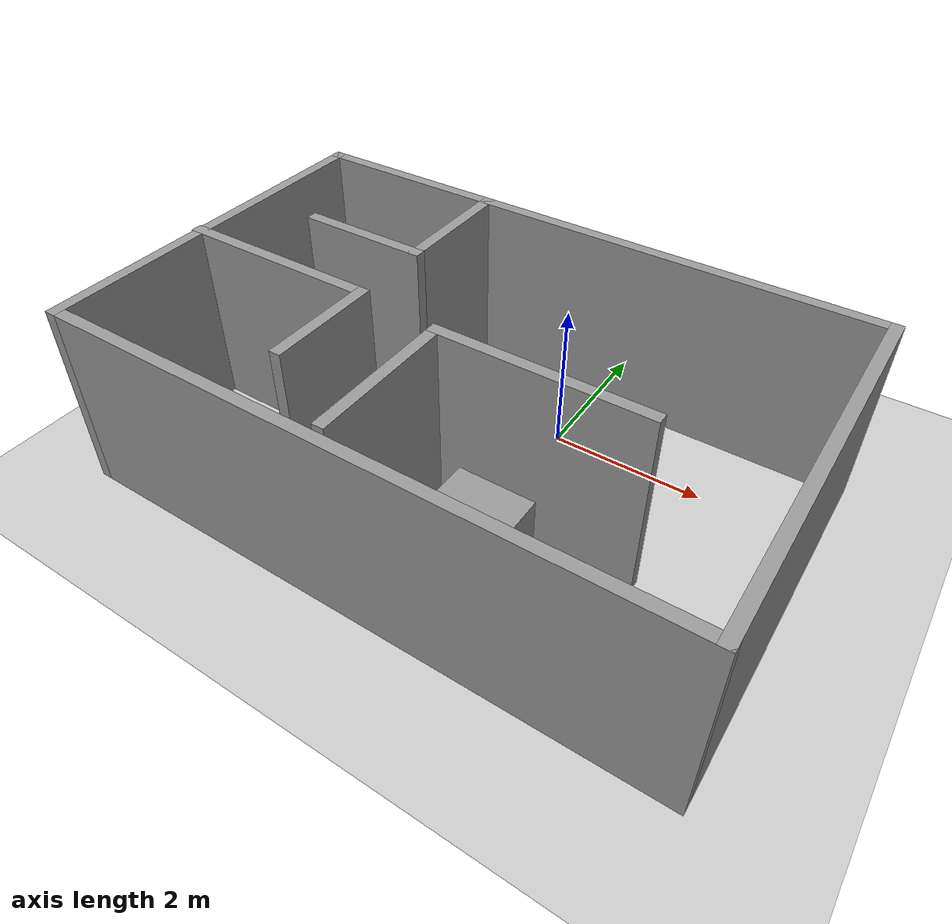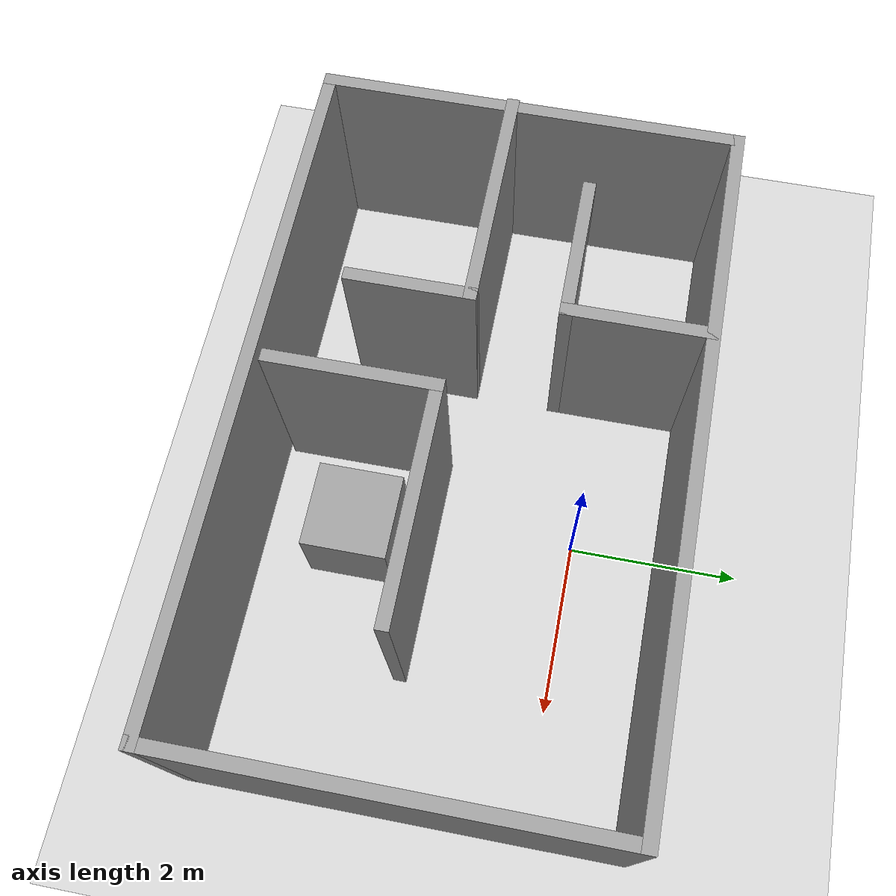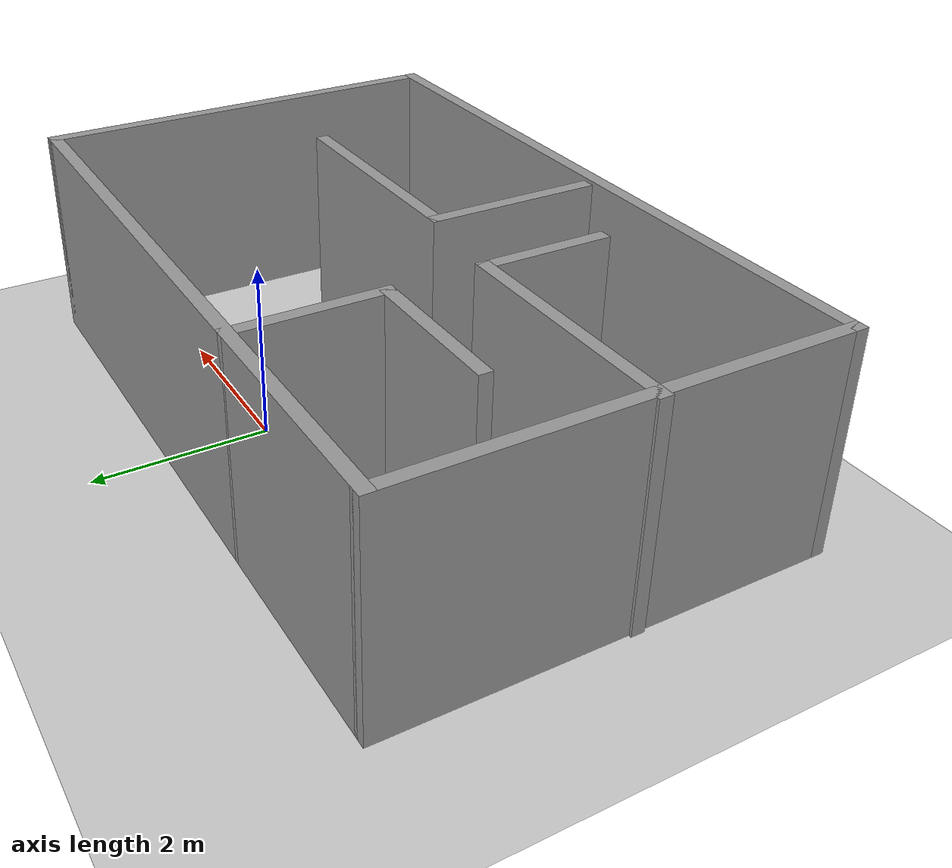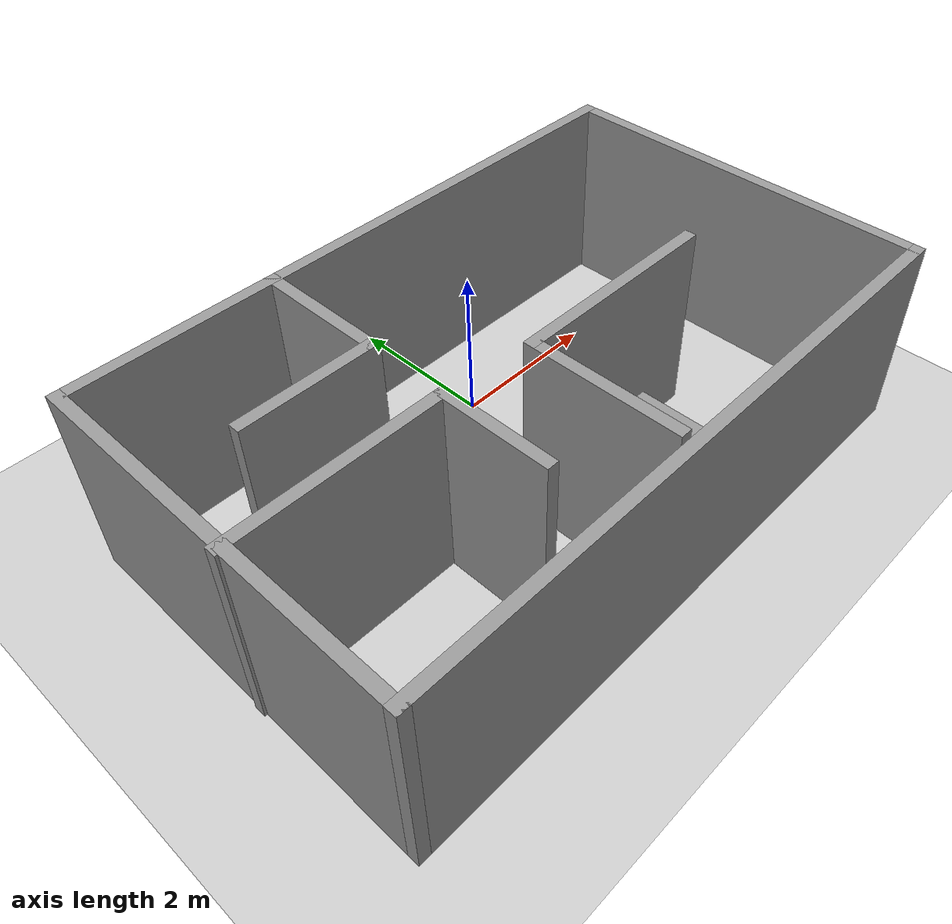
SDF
<sdf version="1.7">
 <world name="default">
  <light name="sun" type="directional">
   <pose>0 0 10 0 -0 0</pose>
   <diffuse>0.8 0.8 0.8 1</diffuse>
   <specular>0.2 0.2 0.2 1</specular>
   <attenuation>
    <range>1000</range>
    <constant>0.9</constant>
    <linear>0.01</linear>
    <quadratic>0.001</quadratic>
   </attenuation>
   <direction>-0.5 0.1 -0.9</direction>
   <spot><inner_angle>0</inner_angle><outer_angle>0</outer_angle><falloff>0</falloff></spot>
  </light>
  <model name="ground_plane">
   <static>1</static>
   <link name="link">
    <collision name="collision">
     <geometry><plane><normal>0 0 1</normal><size>100 100</size></plane></geometry>
     <surface><friction><ode><mu>100</mu><mu2>50</mu2></ode></friction></surface>
    </collision>
    <visual name="visual">
     <cast_shadows>0</cast_shadows>
     <geometry><plane><normal>0 0 1</normal><size>100 100</size></plane></geometry>
     <material>
      <script><uri>file://media/materials/scripts/gazebo.material</uri><name>Gazebo/Grey</name></script>
     </material>
    </visual>
   </link>
  </model>
  <gravity>0 0 -9.8</gravity>
  <magnetic_field>6e-06 2.3e-05 -4.2e-05</magnetic_field>
  <atmosphere type="adiabatic"/>
  <physics type="ode">
   <max_step_size>0.001</max_step_size>
   <real_time_factor>1</real_time_factor>
   <real_time_update_rate>1000</real_time_update_rate>
  </physics>
  <scene><ambient>0.4 0.4 0.4 1</ambient><background>0.7 0.7 0.7 1</background><shadows>1</shadows></scene>
  <audio><device>default</device></audio>
  <spherical_coordinates>
   <surface_model>EARTH_WGS84</surface_model>
   <latitude_deg>0</latitude_deg>
   <longitude_deg>0</longitude_deg>
   <elevation>0</elevation>
   <heading_deg>0</heading_deg>
  </spherical_coordinates>
  <model name="room">
   <pose>-0.191286 -0.414502 0 0 -0 0</pose>
   <link name="Wall_14">
    <collision name="Wall_14_Collision">
     <geometry><box><size>8 0.15 2.5</size></box></geometry>
     <pose>0 0 1.25 0 -0 0</pose>
    </collision>
    <visual name="Wall_14_Visual">
     <pose>0 0 1.25 0 -0 0</pose>
     <geometry><box><size>8 0.15 2.5</size></box></geometry>
     <material>
      <script><uri>file://media/materials/scripts/gazebo.material</uri><name>Gazebo/Grey</name></script>
      <ambient>1 1 1 1</ambient>
     </material>
     <meta><layer>0</layer></meta>
    </visual>
    <pose>-0.325329 1.49651 0 0 -0 0</pose>
   </link>
   <link name="Wall_15">
    <collision name="Wall_15_Collision">
     <geometry><box><size>5 0.15 2.5</size></box></geometry>
     <pose>0 0 1.25 0 -0 0</pose>
    </collision>
    <visual name="Wall_15_Visual">
     <pose>0 0 1.25 0 -0 0</pose>
     <geometry><box><size>5 0.15 2.5</size></box></geometry>
     <material>
      <script><uri>file://media/materials/scripts/gazebo.material</uri><name>Gazebo/Grey</name></script>
      <ambient>1 1 1 1</ambient>
     </material>
     <meta><layer>0</layer></meta>
    </visual>
    <pose>3.59967 -0.92849 0 0 -0 -1.5708</pose>
   </link>
   <link name="Wall_16">
    <collision name="Wall_16_Collision">
     <geometry><box><size>8 0.15 2.5</size></box></geometry>
     <pose>0 0 1.25 0 -0 0</pose>
    </collision>
    <visual name="Wall_16_Visual">
     <pose>0 0 1.25 0 -0 0</pose>
     <geometry><box><size>8 0.15 2.5</size></box></geometry>
     <material>
      <script><uri>file://media/materials/scripts/gazebo.material</uri><name>Gazebo/Grey</name></script>
      <ambient>1 1 1 1</ambient>
     </material>
     <meta><layer>0</layer></meta>
    </visual>
    <pose>-0.325329 -3.35349 0 0 -0 3.14159</pose>
   </link>
   <link name="Wall_17">
    <collision name="Wall_17_Collision">
     <geometry><box><size>5 0.15 2.5</size></box></geometry>
     <pose>0 0 1.25 0 -0 0</pose>
    </collision>
    <visual name="Wall_17_Visual">
     <pose>0 0 1.25 0 -0 0</pose>
     <geometry><box><size>5 0.15 2.5</size></box></geometry>
     <material>
      <script><uri>file://media/materials/scripts/gazebo.material</uri><name>Gazebo/Grey</name></script>
      <ambient>1 1 1 1</ambient>
     </material>
     <meta><layer>0</layer></meta>
    </visual>
    <pose>-4.25033 -0.92849 0 0 -0 1.5708</pose>
   </link>
   <link name="Wall_19">
    <collision name="Wall_19_Collision">
     <geometry><box><size>1.75 0.15 2.5</size></box></geometry>
     <pose>0 0 1.25 0 -0 0</pose>
    </collision>
    <visual name="Wall_19_Visual">
     <pose>0 0 1.25 0 -0 0</pose>
     <geometry><box><size>1.75 0.15 2.5</size></box></geometry>
     <material>
      <script><uri>file://media/materials/scripts/gazebo.material</uri><name>Gazebo/Grey</name></script>
      <ambient>1 1 1 1</ambient>
     </material>
     <meta><layer>0</layer></meta>
    </visual>
    <pose>-1.68242 0.69651 0 0 -0 -1.5708</pose>
   </link>
   <link name="Wall_20">
    <collision name="Wall_20_Collision">
     <geometry><box><size>1.75 0.15 2.5</size></box></geometry>
     <pose>0 0 1.25 0 -0 0</pose>
    </collision>
    <visual name="Wall_20_Visual">
     <pose>0 0 1.25 0 -0 0</pose>
     <geometry><box><size>1.75 0.15 2.5</size></box></geometry>
     <material>
      <script><uri>file://media/materials/scripts/gazebo.material</uri><name>Gazebo/Grey</name></script>
      <ambient>1 1 1 1</ambient>
     </material>
     <meta><layer>0</layer></meta>
    </visual>
    <pose>-2.48242 -0.10349 0 0 -0 3.14159</pose>
   </link>
   <link name="Wall_22">
    <collision name="Wall_22_Collision">
     <geometry><box><size>2.75 0.15 2.5</size></box></geometry>
     <pose>0 0 1.25 0 -0 0</pose>
    </collision>
    <visual name="Wall_22_Visual">
     <pose>0 0 1.25 0 -0 0</pose>
     <geometry><box><size>2.75 0.15 2.5</size></box></geometry>
     <material>
      <script><uri>file://media/materials/scripts/gazebo.material</uri><name>Gazebo/Grey</name></script>
      <ambient>1 1 1 1</ambient>
     </material>
     <meta><layer>0</layer></meta>
    </visual>
    <pose>-2.98127 -1.16421 0 0 -0 0</pose>
   </link>
   <link name="Wall_23">
    <collision name="Wall_23_Collision">
     <geometry><box><size>1.5 0.15 2.5</size></box></geometry>
     <pose>0 0 1.25 0 -0 0</pose>
    </collision>
    <visual name="Wall_23_Visual">
     <pose>0 0 1.25 0 -0 0</pose>
     <geometry><box><size>1.5 0.15 2.5</size></box></geometry>
     <material>
      <script><uri>file://media/materials/scripts/gazebo.material</uri><name>Gazebo/Grey</name></script>
      <ambient>1 1 1 1</ambient>
     </material>
     <meta><layer>0</layer></meta>
    </visual>
    <pose>-1.68127 -1.83921 0 0 -0 -1.5708</pose>
   </link>
   <link name="Wall_25">
    <collision name="Wall_25_Collision">
     <geometry><box><size>2 0.15 2.5</size></box></geometry>
     <pose>0 0 1.25 0 -0 0</pose>
    </collision>
    <visual name="Wall_25_Visual">
     <pose>0 0 1.25 0 -0 0</pose>
     <geometry><box><size>2 0.15 2.5</size></box></geometry>
     <material>
      <script><uri>file://media/materials/scripts/gazebo.material</uri><name>Gazebo/Grey</name></script>
      <ambient>1 1 1 1</ambient>
     </material>
     <meta><layer>0</layer></meta>
    </visual>
    <pose>-0.537693 -2.21929 0 0 -0 1.5708</pose>
   </link>
   <link name="Wall_26">
    <collision name="Wall_26_Collision">
     <geometry><box><size>2.75 0.15 2.5</size></box></geometry>
     <pose>0 0 1.25 0 -0 0</pose>
    </collision>
    <visual name="Wall_26_Visual">
     <pose>0 0 1.25 0 -0 0</pose>
     <geometry><box><size>2.75 0.15 2.5</size></box></geometry>
     <material>
      <script><uri>file://media/materials/scripts/gazebo.material</uri><name>Gazebo/Grey</name></script>
      <ambient>1 1 1 1</ambient>
     </material>
     <meta><layer>0</layer></meta>
    </visual>
    <pose>0.762307 -1.29428 0 0 -0 0</pose>
   </link>
   <static>1</static>
  </model>
  <model name="unit_box">
   <pose>0.311769 -2.55584 0.5 0 -0 0</pose>
   <link name="link">
    <inertial>
     <mass>1</mass>
     <inertia>
      <ixx>0.166667</ixx>
      <ixy>0</ixy>
      <ixz>0</ixz>
      <iyy>0.166667</iyy>
      <iyz>0</iyz>
      <izz>0.166667</izz>
     </inertia>
    </inertial>
    <collision name="collision"><geometry><box><size>1 1 1</size></box></geometry></collision>
    <visual name="visual">
     <geometry><box><size>1 1 1</size></box></geometry>
     <material>
      <script><name>Gazebo/Grey</name><uri>file://media/materials/scripts/gazebo.material</uri></script>
     </material>
    </visual>
   </link>
  </model>
 </world>
</sdf>
